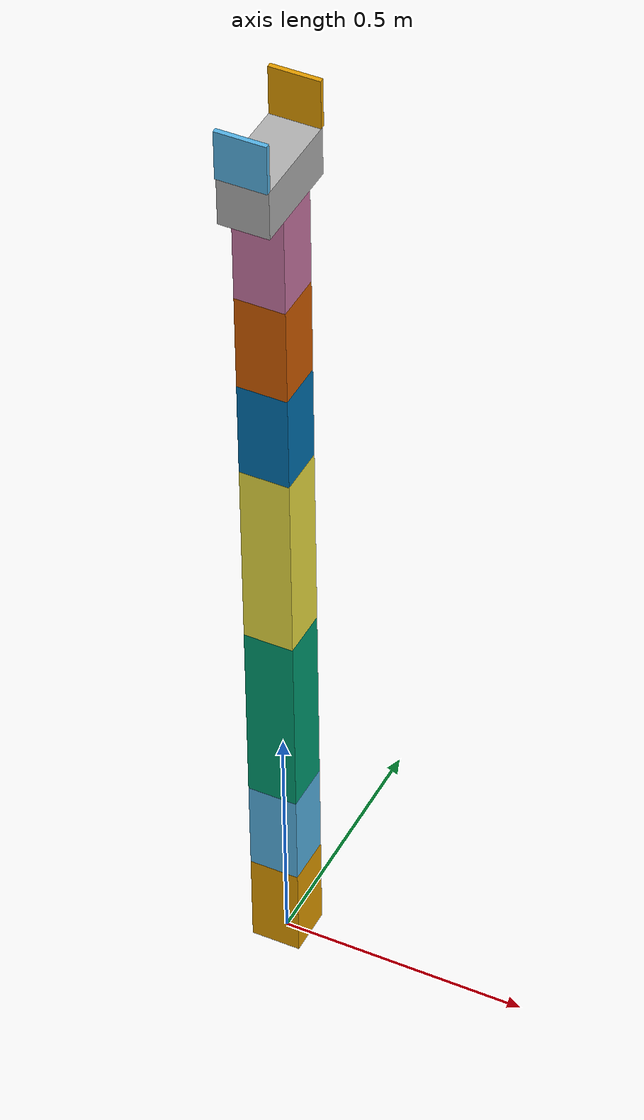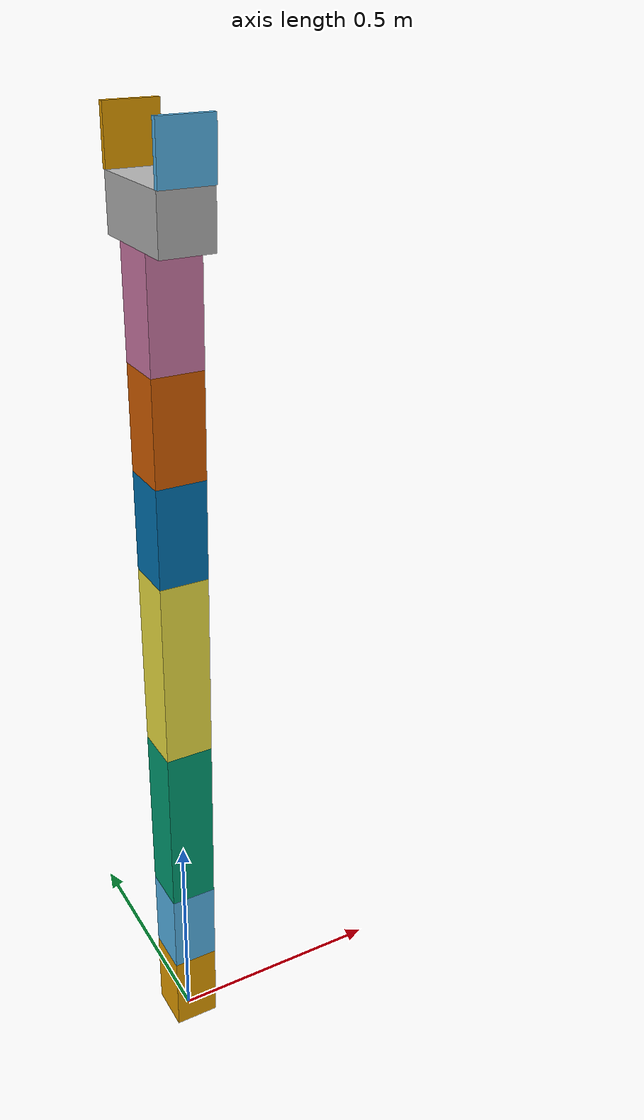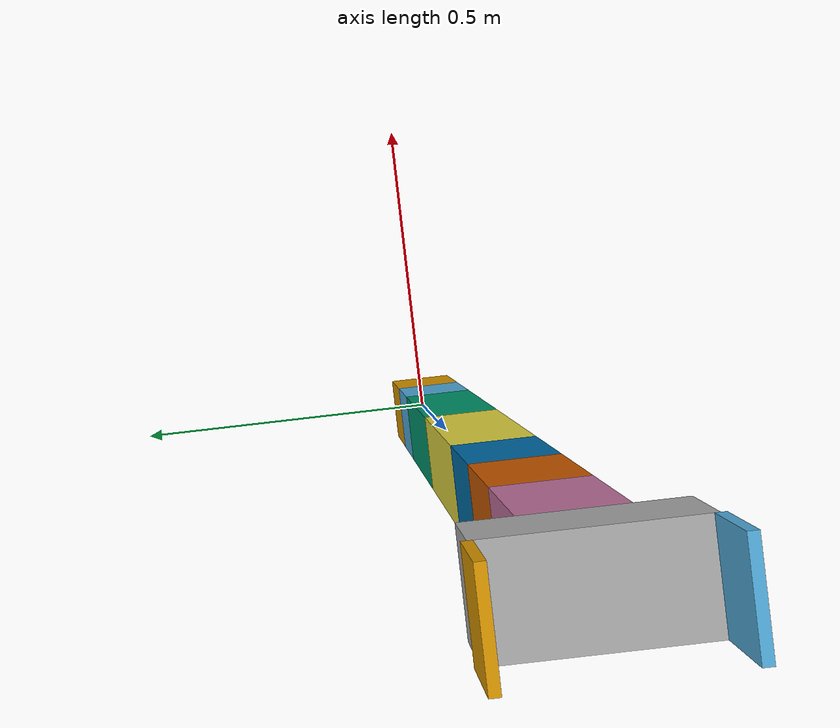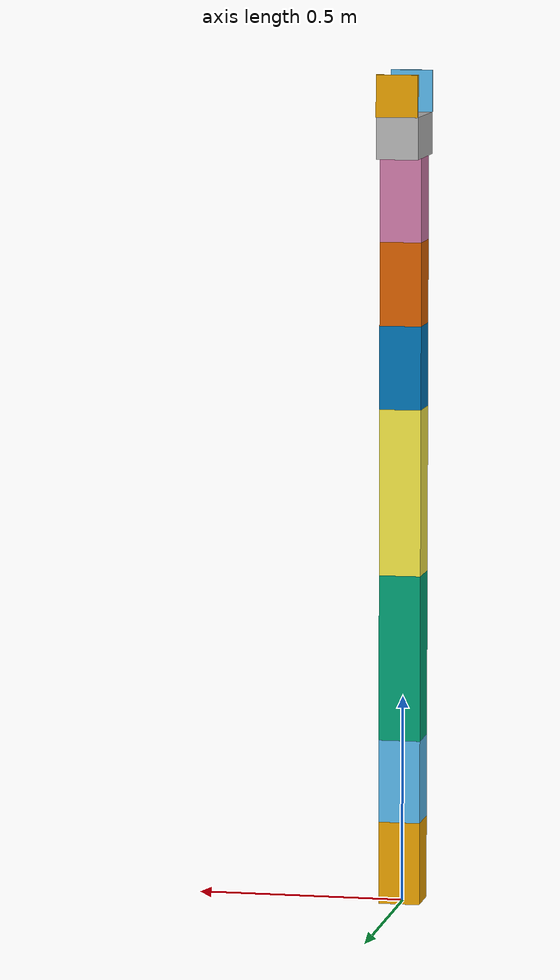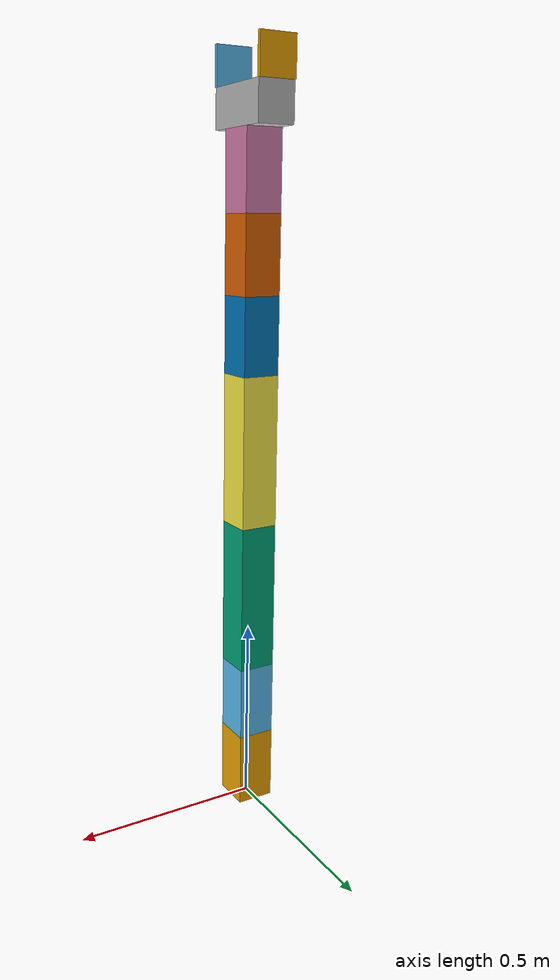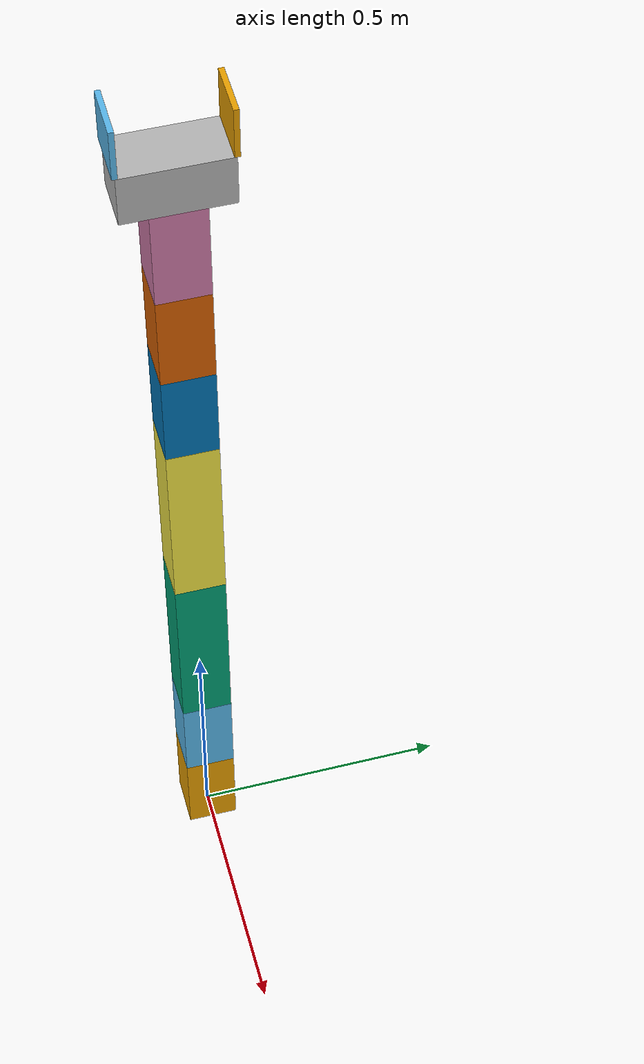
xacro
<robot name="jijin_manipulator" xmlns:xacro="http://www.ros.org/wiki/xacro">

  <xacro:include filename="$(find jijin_manipulator_description)/urdf/jijin_manipulator_6dof.urdf" />

  <xacro:include filename="$(find jijin_manipulator_description)/urdf/jijin_gripper.xacro" />
  <xacro:jijin_gripper parent_link="link_6">
    <origin xyz="0 0 0.2" rpy="0 0 0" />
  </xacro:jijin_gripper>

  #add a link to fix the robot on the ground
  <link name="world"/>
  <joint name="base_joint" type="fixed">
    <parent link="world"/>
    <child  link="base_link"/>
    <origin xyz="0 0 0" rpy="0 0 0" />
  </joint>

  #add firection to links
  <gazebo reference="base_link">
    <selfCollide>false</selfCollide>
    <turnGravityOff>false</turnGravityOff>
    <mu1 value="1.0"/>
    <mu2 value="1.0"/>
    <kp value="10000000.0"/>
    <kd value="1.0"/>
    <fdir1 value="1 0 0"/>
  </gazebo>
  <gazebo reference="link_1">
    <selfCollide>false</selfCollide>
    <turnGravityOff>false</turnGravityOff>
    <mu1 value="1.0"/>
    <mu2 value="1.0"/>
    <kp value="10000000.0"/>
    <kd value="1.0"/>
    <fdir1 value="1 0 0"/>
  </gazebo>
  <gazebo reference="link_2">
    <selfCollide>false</selfCollide>
    <turnGravityOff>false</turnGravityOff>
    <mu1 value="1.0"/>
    <mu2 value="1.0"/>
    <kp value="10000000.0"/>
    <kd value="1.0"/>
    <fdir1 value="1 0 0"/>
  </gazebo>
  <gazebo reference="link_3">
    <selfCollide>false</selfCollide>
    <turnGravityOff>false</turnGravityOff>
    <mu1 value="1.0"/>
    <mu2 value="1.0"/>
    <kp value="10000000.0"/>
    <kd value="1.0"/>
    <fdir1 value="1 0 0"/>
  </gazebo>
  <gazebo reference="link_4">
    <selfCollide>false</selfCollide>
    <turnGravityOff>false</turnGravityOff>
    <mu1 value="1.0"/>
    <mu2 value="1.0"/>
    <kp value="10000000.0"/>
    <kd value="1.0"/>
    <fdir1 value="1 0 0"/>
  </gazebo>
  <gazebo reference="link_5">
    <selfCollide>false</selfCollide>
    <turnGravityOff>false</turnGravityOff>
    <mu1 value="1.0"/>
    <mu2 value="1.0"/>
    <kp value="10000000.0"/>
    <kd value="1.0"/>
    <fdir1 value="1 0 0"/>
  </gazebo>
    <gazebo reference="link_6">
    <selfCollide>false</selfCollide>
    <turnGravityOff>false</turnGravityOff>
    <mu1 value="1.0"/>
    <mu2 value="1.0"/>
    <kp value="10000000.0"/>
    <kd value="1.0"/>
    <fdir1 value="1 0 0"/>
  </gazebo>
  <gazebo reference="finger_left_joint">
    <selfCollide>false</selfCollide>
    <turnGravityOff>false</turnGravityOff>
    <mu1 value="1.0"/>
    <mu2 value="1.0"/>
    <kp value="10000000.0"/>
    <kd value="1.0"/>
    <fdir1 value="1 0 0"/>
  </gazebo>
  <gazebo reference="finger_right_joint">
    <selfCollide>false</selfCollide>
    <turnGravityOff>false</turnGravityOff>
    <mu1 value="1.0"/>
    <mu2 value="1.0"/>
    <kp value="10000000.0"/>
    <kd value="1.0"/>
    <fdir1 value="1 0 0"/>
  </gazebo>

  #name controllor (name which joint can be controlled force/velocity/position)
  <transmission name="link_1_trans">
    <type>transmission_interface/SimpleTransmission</type>
    <joint name="link_1_joint">
      <hardwareInterface>hardware_interface/EffortJointInterface</hardwareInterface>
    </joint>
    <actuator name="link_1_motor">
      <hardwareInterface>hardware_interface/EffortJointInterface</hardwareInterface>
      <mechanicalReduction>1</mechanicalReduction>
    </actuator>
  </transmission>
  <transmission name="link_2_trans">
    <type>transmission_interface/SimpleTransmission</type>
    <joint name="link_2_joint">
      <hardwareInterface>hardware_interface/EffortJointInterface</hardwareInterface>
    </joint>
    <actuator name="link_2_motor">
      <hardwareInterface>hardware_interface/EffortJointInterface</hardwareInterface>
      <mechanicalReduction>1</mechanicalReduction>
    </actuator>
  </transmission>
  <transmission name="link_3_trans">
    <type>transmission_interface/SimpleTransmission</type>
    <joint name="link_3_joint">
      <hardwareInterface>hardware_interface/EffortJointInterface</hardwareInterface>
    </joint>
    <actuator name="link_3_motor">
      <hardwareInterface>hardware_interface/EffortJointInterface</hardwareInterface>
      <mechanicalReduction>1</mechanicalReduction>
    </actuator>
  </transmission>
  <transmission name="link_4_trans">
    <type>transmission_interface/SimpleTransmission</type>
    <joint name="link_4_joint">
      <hardwareInterface>hardware_interface/EffortJointInterface</hardwareInterface>
    </joint>
    <actuator name="link_4_motor">
      <hardwareInterface>hardware_interface/EffortJointInterface</hardwareInterface>
      <mechanicalReduction>1</mechanicalReduction>
    </actuator>
  </transmission>
  <transmission name="link_5_trans">
    <type>transmission_interface/SimpleTransmission</type>
    <joint name="link_5_joint">
      <hardwareInterface>hardware_interface/EffortJointInterface</hardwareInterface>
    </joint>
    <actuator name="link_5_motor">
      <hardwareInterface>hardware_interface/EffortJointInterface</hardwareInterface>
      <mechanicalReduction>1</mechanicalReduction>
    </actuator>
  </transmission>
  <transmission name="link_6_trans">
    <type>transmission_interface/SimpleTransmission</type>
    <joint name="link_6_joint">
      <hardwareInterface>hardware_interface/EffortJointInterface</hardwareInterface>
    </joint>
    <actuator name="link_6_motor">
      <hardwareInterface>hardware_interface/EffortJointInterface</hardwareInterface>
      <mechanicalReduction>1</mechanicalReduction>
    </actuator>
  </transmission>
  <transmission name="finger_left_trans">
    <type>transmission_interface/SimpleTransmission</type>
    <joint name="finger_left_joint">
      <hardwareInterface>hardware_interface/EffortJointInterface</hardwareInterface>
    </joint>
    <actuator name="finger_left_motor">
      <hardwareInterface>hardware_interface/EffortJointInterface</hardwareInterface>
      <mechanicalReduction>1</mechanicalReduction>
    </actuator>
  </transmission>
  <transmission name="finger_right_trans">
    <type>transmission_interface/SimpleTransmission</type>
    <joint name="finger_right_joint">
      <hardwareInterface>hardware_interface/EffortJointInterface</hardwareInterface>
    </joint>
    <actuator name="finger_right_motor">
      <hardwareInterface>hardware_interface/EffortJointInterface</hardwareInterface>
      <mechanicalReduction>1</mechanicalReduction>
    </actuator>
  </transmission>

  #add the plugine to active the controllors
  <gazebo>
    <plugin name="gazebo_ros_control" filename="libgazebo_ros_control.so">
      <robotNamespace>/jijin_manipulator</robotNamespace>
      <legacyModeNS>DefaultRobotHWSim</legacyModeNS>
    </plugin>
  </gazebo>

</robot>

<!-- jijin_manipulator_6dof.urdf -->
<robot name="jijin_manipulator">

  #define a base_link on the ground
  <link name="base_link">
    <visual>
      <geometry>
        <box size="0.1 0.1 0.2"/>
      </geometry>
      <origin xyz="0 0 0.1" rpy="0 0 0"/>
    </visual>
    <collision>
      <geometry>
        <box size="0.1 0.1 0.2"/>
      </geometry>
      <origin xyz="0 0 0.1" rpy="0 0 0"/>
    </collision>
    <inertial>
       <origin xyz="0 0 0.1" rpy="0 0 0"/>
       <mass value="1"/>
       <inertia ixx="1"  ixy="0"  ixz="0" iyy="1" iyz="0" izz="1" />
    </inertial>
  </link>

  #define a link 1 rotate around z
  <link name="link_1">
    <visual>
      <geometry>
        <box size="0.1 0.1 0.2"/>
      </geometry>
      <origin xyz="0 0 0.1" rpy="0 0 0"/>
    </visual>
    <collision>
      <geometry>
        <box size="0.1 0.1 0.2"/>
      </geometry>
      <origin xyz="0 0 0.1" rpy="0 0 0"/>
    </collision>
    <inertial>
       <origin xyz="0 0 0.1" rpy="0 0 0"/>
       <mass value="1"/>
       <inertia ixx="1"  ixy="0"  ixz="0" iyy="1" iyz="0" izz="1" />
    </inertial>
  </link>
  <joint name="link_1_joint" type="continuous">
    <parent link="base_link"/>
    <child  link="link_1"/>
    <origin xyz="0 0 0.2" rpy="0 0 0" />
    <axis xyz="0 0 1"/>
    <limit effort="10000" velocity="0.1"/>
    <joint_properties damping="0.0" friction="0.0"/>
  </joint>

  #define a link 2 rotate around x
  <link name="link_2">
    <visual>
      <geometry>
        <box size="0.1 0.1 0.4"/>
      </geometry>
      <origin xyz="0 0 0.2" rpy="0 0 0"/>
    </visual>
    <collision>
      <geometry>
        <box size="0.1 0.1 0.4"/>
      </geometry>
      <origin xyz="0 0 0.2" rpy="0 0 0"/>
    </collision>
    <inertial>
       <origin xyz="0 0 0.2" rpy="0 0 0"/>
       <mass value="1"/>
       <inertia ixx="1"  ixy="0"  ixz="0" iyy="1" iyz="0" izz="1" />
    </inertial>
  </link>
  <joint name="link_2_joint" type="continuous">
    <parent link="link_1"/>
    <child  link="link_2"/>
    <origin xyz="0 0 0.2" rpy="0 0 0" />
    <axis xyz="1 0 0"/>
    <limit effort="10000" velocity="0.1"/>
    <joint_properties damping="0.0" friction="0.0"/>
  </joint>

  #define a link 3 rotate around x
  <link name="link_3">
    <visual>
      <geometry>
        <box size="0.1 0.1 0.4"/>
      </geometry>
      <origin xyz="0 0 0.2" rpy="0 0 0"/>
    </visual>
    <collision>
      <geometry>
        <box size="0.1 0.1 0.4"/>
      </geometry>
      <origin xyz="0 0 0.2" rpy="0 0 0"/>
    </collision>
    <inertial>
       <origin xyz="0 0 0.2" rpy="0 0 0"/>
       <mass value="1"/>
       <inertia ixx="1"  ixy="0"  ixz="0" iyy="1" iyz="0" izz="1" />
    </inertial>
  </link>
  <joint name="link_3_joint" type="continuous">
    <parent link="link_2"/>
    <child  link="link_3"/>
    <origin xyz="0 0 0.4" rpy="0 0 0" />
    <axis xyz="1 0 0"/>
    <limit effort="10000" velocity="0.1"/>
    <joint_properties damping="0.0" friction="0.0"/>
  </joint>

  #define a link 4 rotate around y
  <link name="link_4">
    <visual>
      <geometry>
        <box size="0.1 0.1 0.2"/>
      </geometry>
      <origin xyz="0 0 0.1" rpy="0 0 0"/>
    </visual>
    <collision>
      <geometry>
        <box size="0.1 0.1 0.2"/>
      </geometry>
      <origin xyz="0 0 0.1" rpy="0 0 0"/>
    </collision>
    <inertial>
       <origin xyz="0 0 0.1" rpy="0 0 0"/>
       <mass value="1"/>
       <inertia ixx="1"  ixy="0"  ixz="0" iyy="1" iyz="0" izz="1" />
    </inertial>
  </link>
  <joint name="link_4_joint" type="continuous">
    <parent link="link_3"/>
    <child  link="link_4"/>
    <origin xyz="0 0 0.4" rpy="0 0 0" />
    <axis xyz="0 1 0"/>
    <limit effort="10000" velocity="0.1"/>
    <joint_properties damping="0.0" friction="0.0"/>
  </joint>

  #define a link 5 rotate around x
  <link name="link_5">
    <visual>
      <geometry>
        <box size="0.1 0.1 0.2"/>
      </geometry>
      <origin xyz="0 0 0.1" rpy="0 0 0"/>
    </visual>
    <collision>
      <geometry>
        <box size="0.1 0.1 0.2"/>
      </geometry>
      <origin xyz="0 0 0.1" rpy="0 0 0"/>
    </collision>
    <inertial>
       <origin xyz="0 0 0.1" rpy="0 0 0"/>
       <mass value="1"/>
       <inertia ixx="1"  ixy="0"  ixz="0" iyy="1" iyz="0" izz="1" />
    </inertial>
  </link>
  <joint name="link_5_joint" type="continuous">
    <parent link="link_4"/>
    <child  link="link_5"/>
    <origin xyz="0 0 0.2" rpy="0 0 0" />
    <axis xyz="1 0 0"/>
    <limit effort="10000" velocity="0.1"/>
    <joint_properties damping="0.0" friction="0.0"/>
  </joint>

  #define a link 6 rotate around z
  <link name="link_6">
    <visual>
      <geometry>
        <box size="0.1 0.1 0.2"/>
      </geometry>
      <origin xyz="0 0 0.1" rpy="0 0 0"/>
    </visual>
    <collision>
      <geometry>
        <box size="0.1 0.1 0.2"/>
      </geometry>
      <origin xyz="0 0 0.1" rpy="0 0 0"/>
    </collision>
    <inertial>
       <origin xyz="0 0 0.1" rpy="0 0 0"/>
       <mass value="1"/>
       <inertia ixx="1"  ixy="0"  ixz="0" iyy="1" iyz="0" izz="1" />
    </inertial>
  </link>
  <joint name="link_6_joint" type="continuous">
    <parent link="link_5"/>
    <child  link="link_6"/>
    <origin xyz="0 0 0.2" rpy="0 0 0" />
    <axis xyz="0 0 1"/>
    <limit effort="10000" velocity="0.1"/>
    <joint_properties damping="0.0" friction="0.0"/>
  </joint>

</robot>

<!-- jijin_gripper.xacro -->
<robot name="jijin_gripper" xmlns:xacro="http://ros.org/wiki/xacro">

  <xacro:macro name="jijin_gripper" params="parent_link *joint_pose">
    #define a base_link of gripper
    <link name="gripper_base_link">
      <visual>
        <geometry>
          <box size="0.1 0.2 0.1"/>
        </geometry>
        <origin xyz="0 0 0.05" rpy="0 0 0"/>
      </visual>
      <collision>
        <geometry>
          <box size="0.1 0.2 0.1"/>
        </geometry>
        <origin xyz="0 0 0.05" rpy="0 0 0"/>
      </collision>
      <inertial>
         <origin xyz="0 0 0.05" rpy="0 0 0"/>
         <mass value="0.1"/>
         <inertia ixx="1"  ixy="0"  ixz="0" iyy="1" iyz="0" izz="1" />
      </inertial>
    </link>
    <joint name="gripper_base_link_joint" type="fixed">
      <parent link="${parent_link}"/>
      <child  link="gripper_base_link"/>
      <xacro:insert_block name="joint_pose"/>
    </joint>

    # left finger
    <link name="finger_left_link">
      <visual>
        <geometry>
          <box size="0.1 0.01 0.1"/>
        </geometry>
        <origin xyz="0 0 0.05" rpy="0 0 0"/>
      </visual>
      <collision>
        <geometry>
          <box size="0.1 0.01 0.1"/>
        </geometry>
        <origin xyz="0 0 0.05" rpy="0 0 0"/>
      </collision>
      <inertial>
         <origin xyz="0 0 0.05" rpy="0 0 0"/>
         <mass value="0.1"/>
         <inertia ixx="1"  ixy="0"  ixz="0" iyy="1" iyz="0" izz="1" />
      </inertial>
    </link>
    <joint name="finger_left_joint" type="prismatic">
      <parent link="gripper_base_link"/>
      <child  link="finger_left_link"/>
      <origin xyz="0 0.1 0.1" rpy="0 0 0" />
      <axis xyz="0 1 0"/>
      <limit lower="-0.09" upper="0" effort="100" velocity="100"/>
      <joint_properties damping="0.0" friction="0.0"/>
    </joint>

    # right finger
    <link name="finger_right_link">
      <visual>
        <geometry>
          <box size="0.1 0.01 0.1"/>
        </geometry>
        <origin xyz="0 0 0.05" rpy="0 0 0"/>
      </visual>
      <collision>
        <geometry>
          <box size="0.1 0.01 0.1"/>
        </geometry>
        <origin xyz="0 0 0.05" rpy="0 0 0"/>
      </collision>
      <inertial>
         <origin xyz="0 0 0.05" rpy="0 0 0"/>
         <mass value="0.1"/>
         <inertia ixx="1"  ixy="0"  ixz="0" iyy="1" iyz="0" izz="1" />
      </inertial>
    </link>
    <joint name="finger_right_joint" type="prismatic">
      <parent link="gripper_base_link"/>
      <child  link="finger_right_link"/>
      <origin xyz="0 -0.1 0.1" rpy="0 0 0" />
      <axis xyz="0 1 0"/>
      <limit lower="0" upper="0.09" effort="100" velocity="100"/>
      <joint_properties damping="0.0" friction="0.0"/>
    </joint>

  </xacro:macro>
</robot>
